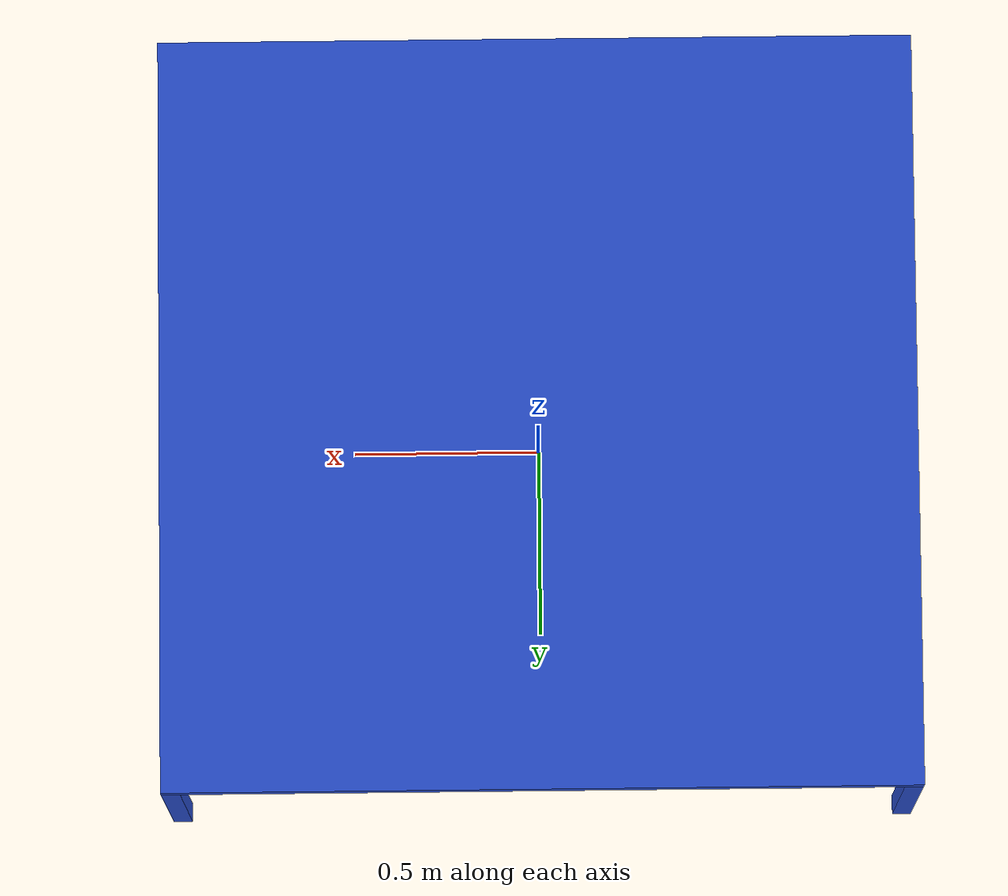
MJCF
<mujoco>
    <default>
        <default class="viz_Table" >
            <geom  contype="0" conaffinity="0" type="mesh"/>
        </default>
        <default class="body_Table" >
            <geom contype="1" conaffinity="1" group="3" solref="0.001 1"/>
        </default>
    </default>
    <asset>
        <texture name="wood" type="cube" height="1" width="1" file="blue_table_1.png" />
        <material name="wood" texture="wood"/>
    </asset>
   <worldbody>
        <body name="table_vis" pos="0 0 0" childclass="viz_Table">
            <geom type="box" material="wood" size="1.0 1.0 .025" pos="0 0 0.735" mass="40"/>
            <geom type="box" material="wood" size="0.025 0.025 0.355" pos="-0.975 0.975 0.355"/>
            <geom type="box" material="wood" size="0.025 0.025 0.355" pos="-0.975 -0.975 0.355"/>
            <geom type="box" material="wood" size="0.025 0.025 0.355" pos="0.975 0.975 0.355"/>
            <geom type="box" material="wood" size="0.025 0.025 0.355" pos="0.975 -0.975 0.355"/>
            <site name="top_site" pos="0 0 0.76" size="0.01" rgba="1 0 0 0" group="2"/>
    <site name="bottom_site" pos="0 0 0.0" size="0.01" rgba="0 1 0 0"/>
</body>
        <body name="table_body" pos="0 0 0"  childclass="body_Table" >
            <geom type="box" size="1.0 1.0 .025" pos="0 0 0.735" mass="40" />
            <geom type="box" size="0.025 0.025 0.355" pos="-0.975 0.975 0.355"/>
            <geom type="box" size="0.025 0.025 0.355" pos="-0.975 -0.975 0.355"/>
            <geom type="box" size="0.025 0.025 0.355" pos="0.975 0.975 0.355"/>
            <geom type="box" size="0.025 0.025 0.355" pos="0.975 -0.975 0.355"/>
        </body>
    </worldbody>
</mujoco>
